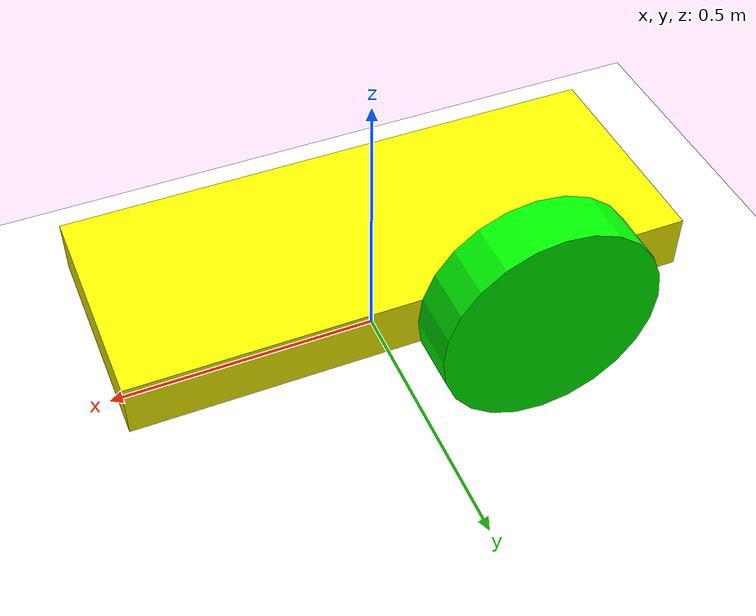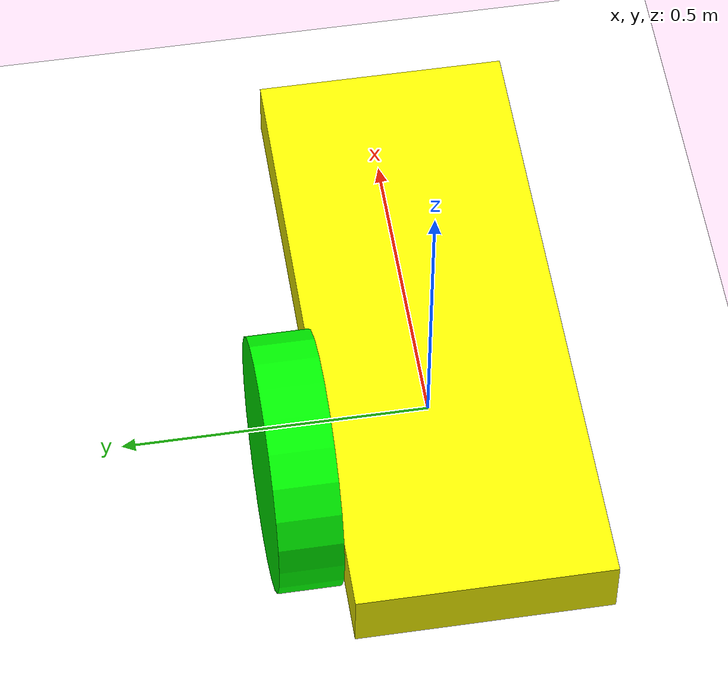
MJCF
<mujoco>
	<!-- Easy to model when the gravity is zero -->
	<option gravity="0 0 0"/>
	<worldbody>
        <light diffuse=".5 .5 .5" pos="0 0 3" dir="0 0 -1"/>
		<geom type="plane" size="1 1 0.1" rgba="1 1 1 1"/>

		<!-- We can use simulate.exe, drag the model and set the rendering frame to "body" -->
		<!-- Using that, we can determine how to rotate the body to make it look like a car -->
		<body name="chassis" pos="0 0 .2" euler="0 90 0">
			<joint type="free"/>
			<!-- we can set the x to be 10cm, y to be 40cm and z to be 1m -->
			<geom type="box" size=".05 .2 .5" rgba="1 1 0 1"/>

			<!-- We can add a wheel -->
			<body name="left_wheel" pos="0 0.25 -0.2" euler="90 0 0">
			<joint type="hinge"/>
			<!-- cylinder only have length and radius -->
			<geom type="cylinder" size=".2 .05" rgba="0 1 0 1"/>
		</body>
		</body>
	</worldbody>
</mujoco>
